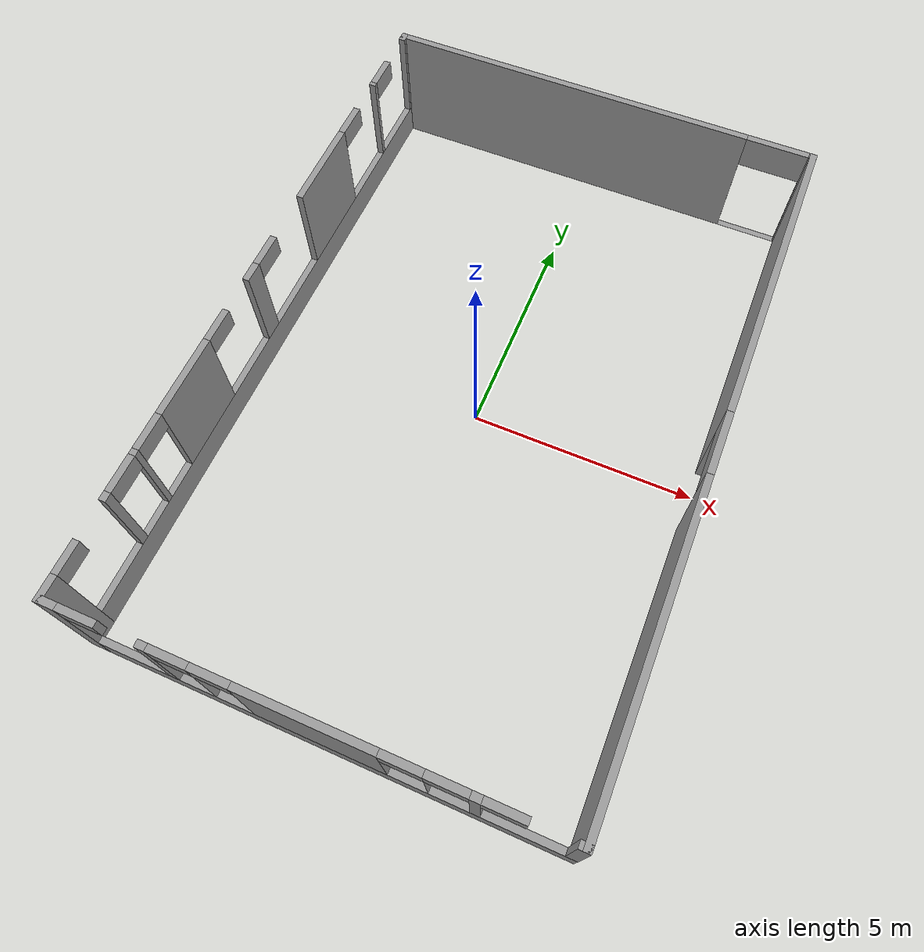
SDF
<?xml version='1.0'?>
<sdf version='1.6'>
  <model name='LabAlfa'>
    <pose frame=''>0 0 0 0 -0 0</pose>
    <link name='Wall_1'>
      <pose frame=''>0 -7.5 0 0 -0 0</pose>
      <visual name='Wall_1_Visual_0'>
        <pose frame=''>-4.8625 0 1.5 0 -0 0</pose>
        <geometry>
          <box>
            <size>0.425 0.15 3</size>
          </box>
        </geometry>
        <material>
          <script>
            <uri>file://media/materials/scripts/gazebo.material</uri>
            <name>Gazebo/Grey</name>
          </script>
          <ambient>1 1 1 1</ambient>
        </material>
      </visual>
      <collision name='Wall_1_Collision_0'>
        <geometry>
          <box>
            <size>0.425 0.15 3</size>
          </box>
        </geometry>
        <pose frame=''>-4.8625 0 1.5 0 -0 0</pose>
      </collision>
      <visual name='Wall_1_Visual_1'>
        <pose frame=''>0.2125 0 0.375 0 -0 0</pose>
        <geometry>
          <box>
            <size>9.725 0.15 0.75</size>
          </box>
        </geometry>
        <material>
          <script>
            <uri>file://media/materials/scripts/gazebo.material</uri>
            <name>Gazebo/Grey</name>
          </script>
          <ambient>1 1 1 1</ambient>
        </material>
      </visual>
      <collision name='Wall_1_Collision_1'>
        <geometry>
          <box>
            <size>9.725 0.15 0.75</size>
          </box>
        </geometry>
        <pose frame=''>0.2125 0 0.375 0 -0 0</pose>
      </collision>
      <visual name='Wall_1_Visual_2'>
        <pose frame=''>-2.95 0 1.875 0 -0 0</pose>
        <geometry>
          <box>
            <size>0.2 0.15 2.25</size>
          </box>
        </geometry>
        <material>
          <script>
            <uri>file://media/materials/scripts/gazebo.material</uri>
            <name>Gazebo/Grey</name>
          </script>
          <ambient>1 1 1 1</ambient>
        </material>
      </visual>
      <collision name='Wall_1_Collision_2'>
        <geometry>
          <box>
            <size>0.2 0.15 2.25</size>
          </box>
        </geometry>
        <pose frame=''>-2.95 0 1.875 0 -0 0</pose>
      </collision>
      <visual name='Wall_1_Visual_3'>
        <pose frame=''>-2.05 0 1.875 0 -0 0</pose>
        <geometry>
          <box>
            <size>0 0.15 2.25</size>
          </box>
        </geometry>
        <material>
          <script>
            <uri>file://media/materials/scripts/gazebo.material</uri>
            <name>Gazebo/Grey</name>
          </script>
          <ambient>1 1 1 1</ambient>
        </material>
      </visual>
      <collision name='Wall_1_Collision_3'>
        <geometry>
          <box>
            <size>0 0.15 2.25</size>
          </box>
        </geometry>
        <pose frame=''>-2.05 0 1.875 0 -0 0</pose>
      </collision>
      <visual name='Wall_1_Visual_4'>
        <pose frame=''>0.1 0 1.875 0 -0 0</pose>
        <geometry>
          <box>
            <size>2.7 0.15 2.25</size>
          </box>
        </geometry>
        <material>
          <script>
            <uri>file://media/materials/scripts/gazebo.material</uri>
            <name>Gazebo/Grey</name>
          </script>
          <ambient>1 1 1 1</ambient>
        </material>
      </visual>
      <collision name='Wall_1_Collision_4'>
        <geometry>
          <box>
            <size>2.7 0.15 2.25</size>
          </box>
        </geometry>
        <pose frame=''>0.1 0 1.875 0 -0 0</pose>
      </collision>
      <visual name='Wall_1_Visual_5'>
        <pose frame=''>2.25 0 1.875 0 -0 0</pose>
        <geometry>
          <box>
            <size>0 0.15 2.25</size>
          </box>
        </geometry>
        <material>
          <script>
            <uri>file://media/materials/scripts/gazebo.material</uri>
            <name>Gazebo/Grey</name>
          </script>
          <ambient>1 1 1 1</ambient>
        </material>
      </visual>
      <collision name='Wall_1_Collision_5'>
        <geometry>
          <box>
            <size>0 0.15 2.25</size>
          </box>
        </geometry>
        <pose frame=''>2.25 0 1.875 0 -0 0</pose>
      </collision>
      <visual name='Wall_1_Visual_6'>
        <pose frame=''>3.15 0 1.875 0 -0 0</pose>
        <geometry>
          <box>
            <size>0.2 0.15 2.25</size>
          </box>
        </geometry>
        <material>
          <script>
            <uri>file://media/materials/scripts/gazebo.material</uri>
            <name>Gazebo/Grey</name>
          </script>
          <ambient>1 1 1 1</ambient>
        </material>
      </visual>
      <collision name='Wall_1_Collision_6'>
        <geometry>
          <box>
            <size>0.2 0.15 2.25</size>
          </box>
        </geometry>
        <pose frame=''>3.15 0 1.875 0 -0 0</pose>
      </collision>
      <visual name='Wall_1_Visual_7'>
        <pose frame=''>4.95997 0 1.875 0 -0 0</pose>
        <geometry>
          <box>
            <size>0.230054 0.15 2.25</size>
          </box>
        </geometry>
        <material>
          <script>
            <uri>file://media/materials/scripts/gazebo.material</uri>
            <name>Gazebo/Grey</name>
          </script>
          <ambient>1 1 1 1</ambient>
        </material>
      </visual>
      <collision name='Wall_1_Collision_7'>
        <geometry>
          <box>
            <size>0.230054 0.15 2.25</size>
          </box>
        </geometry>
        <pose frame=''>4.95997 0 1.875 0 -0 0</pose>
      </collision>
      <visual name='Wall_1_Visual_8'>
        <pose frame=''>-4.25 0 2.75 0 -0 0</pose>
        <geometry>
          <box>
            <size>0.8 0.15 0.5</size>
          </box>
        </geometry>
        <material>
          <script>
            <uri>file://media/materials/scripts/gazebo.material</uri>
            <name>Gazebo/Grey</name>
          </script>
          <ambient>1 1 1 1</ambient>
        </material>
      </visual>
      <collision name='Wall_1_Collision_8'>
        <geometry>
          <box>
            <size>0.8 0.15 0.5</size>
          </box>
        </geometry>
        <pose frame=''>-4.25 0 2.75 0 -0 0</pose>
      </collision>
      <visual name='Wall_1_Visual_9'>
        <pose frame=''>-2.45 0 2.75 0 -0 0</pose>
        <geometry>
          <box>
            <size>0.8 0.15 0.5</size>
          </box>
        </geometry>
        <material>
          <script>
            <uri>file://media/materials/scripts/gazebo.material</uri>
            <name>Gazebo/Grey</name>
          </script>
          <ambient>1 1 1 1</ambient>
        </material>
      </visual>
      <collision name='Wall_1_Collision_9'>
        <geometry>
          <box>
            <size>0.8 0.15 0.5</size>
          </box>
        </geometry>
        <pose frame=''>-2.45 0 2.75 0 -0 0</pose>
      </collision>
      <visual name='Wall_1_Visual_10'>
        <pose frame=''>-1.65 0 2.75 0 -0 0</pose>
        <geometry>
          <box>
            <size>0.8 0.15 0.5</size>
          </box>
        </geometry>
        <material>
          <script>
            <uri>file://media/materials/scripts/gazebo.material</uri>
            <name>Gazebo/Grey</name>
          </script>
          <ambient>1 1 1 1</ambient>
        </material>
      </visual>
      <collision name='Wall_1_Collision_10'>
        <geometry>
          <box>
            <size>0.8 0.15 0.5</size>
          </box>
        </geometry>
        <pose frame=''>-1.65 0 2.75 0 -0 0</pose>
      </collision>
      <visual name='Wall_1_Visual_11'>
        <pose frame=''>1.85 0 2.75 0 -0 0</pose>
        <geometry>
          <box>
            <size>0.8 0.15 0.5</size>
          </box>
        </geometry>
        <material>
          <script>
            <uri>file://media/materials/scripts/gazebo.material</uri>
            <name>Gazebo/Grey</name>
          </script>
          <ambient>1 1 1 1</ambient>
        </material>
      </visual>
      <collision name='Wall_1_Collision_11'>
        <geometry>
          <box>
            <size>0.8 0.15 0.5</size>
          </box>
        </geometry>
        <pose frame=''>1.85 0 2.75 0 -0 0</pose>
      </collision>
      <visual name='Wall_1_Visual_12'>
        <pose frame=''>2.65 0 2.75 0 -0 0</pose>
        <geometry>
          <box>
            <size>0.8 0.15 0.5</size>
          </box>
        </geometry>
        <material>
          <script>
            <uri>file://media/materials/scripts/gazebo.material</uri>
            <name>Gazebo/Grey</name>
          </script>
          <ambient>1 1 1 1</ambient>
        </material>
      </visual>
      <collision name='Wall_1_Collision_12'>
        <geometry>
          <box>
            <size>0.8 0.15 0.5</size>
          </box>
        </geometry>
        <pose frame=''>2.65 0 2.75 0 -0 0</pose>
      </collision>
      <visual name='Wall_1_Visual_13'>
        <pose frame=''>3.64747 0 2.75 0 -0 0</pose>
        <geometry>
          <box>
            <size>0.794946 0.15 0.5</size>
          </box>
        </geometry>
        <material>
          <script>
            <uri>file://media/materials/scripts/gazebo.material</uri>
            <name>Gazebo/Grey</name>
          </script>
          <ambient>1 1 1 1</ambient>
        </material>
      </visual>
      <collision name='Wall_1_Collision_13'>
        <geometry>
          <box>
            <size>0.794946 0.15 0.5</size>
          </box>
        </geometry>
        <pose frame=''>3.64747 0 2.75 0 -0 0</pose>
      </collision>
    </link>
    <link name='Wall_13'>
      <pose frame=''>0 7.5 0 0 -0 0</pose>
      <visual name='Wall_13_Visual_0'>
        <pose frame=''>-0.7875 0 1.5 0 -0 0</pose>
        <geometry>
          <box>
            <size>8.575 0.15 3</size>
          </box>
        </geometry>
        <material>
          <script>
            <uri>file://media/materials/scripts/gazebo.material</uri>
            <name>Gazebo/Grey</name>
          </script>
          <ambient>1 1 1 1</ambient>
        </material>
      </visual>
      <collision name='Wall_13_Collision_0'>
        <geometry>
          <box>
            <size>8.575 0.15 3</size>
          </box>
        </geometry>
        <pose frame=''>-0.7875 0 1.5 0 -0 0</pose>
      </collision>
      <visual name='Wall_13_Visual_1'>
        <pose frame=''>4.9875 0 1.5 0 -0 0</pose>
        <geometry>
          <box>
            <size>0.175 0.15 3</size>
          </box>
        </geometry>
        <material>
          <script>
            <uri>file://media/materials/scripts/gazebo.material</uri>
            <name>Gazebo/Grey</name>
          </script>
          <ambient>1 1 1 1</ambient>
        </material>
      </visual>
      <collision name='Wall_13_Collision_1'>
        <geometry>
          <box>
            <size>0.175 0.15 3</size>
          </box>
        </geometry>
        <pose frame=''>4.9875 0 1.5 0 -0 0</pose>
      </collision>
      <visual name='Wall_13_Visual_2'>
        <pose frame=''>4.2 0 0 0 -0 0</pose>
        <geometry>
          <box>
            <size>1.4 0.15 0</size>
          </box>
        </geometry>
        <material>
          <script>
            <uri>file://media/materials/scripts/gazebo.material</uri>
            <name>Gazebo/Grey</name>
          </script>
          <ambient>1 1 1 1</ambient>
        </material>
      </visual>
      <collision name='Wall_13_Collision_2'>
        <geometry>
          <box>
            <size>1.4 0.15 0</size>
          </box>
        </geometry>
        <pose frame=''>4.2 0 0 0 -0 0</pose>
      </collision>
      <visual name='Wall_13_Visual_3'>
        <pose frame=''>4.2 0 2.6 0 -0 0</pose>
        <geometry>
          <box>
            <size>1.4 0.15 0.8</size>
          </box>
        </geometry>
        <material>
          <script>
            <uri>file://media/materials/scripts/gazebo.material</uri>
            <name>Gazebo/Grey</name>
          </script>
          <ambient>1 1 1 1</ambient>
        </material>
      </visual>
      <collision name='Wall_13_Collision_3'>
        <geometry>
          <box>
            <size>1.4 0.15 0.8</size>
          </box>
        </geometry>
        <pose frame=''>4.2 0 2.6 0 -0 0</pose>
      </collision>
    </link>
    <link name='Wall_4'>
      <pose frame=''>5 0 0 0 -0 1.5708</pose>
      <visual name='Wall_4_Visual_0'>
        <pose frame=''>-4.18509 0 1.5 0 -0 0</pose>
        <geometry>
          <box>
            <size>6.77981 0.15 3</size>
          </box>
        </geometry>
        <material>
          <script>
            <uri>file://media/materials/scripts/gazebo.material</uri>
            <name>Gazebo/Grey</name>
          </script>
          <ambient>1 1 1 1</ambient>
        </material>
      </visual>
      <collision name='Wall_4_Collision_0'>
        <geometry>
          <box>
            <size>6.77981 0.15 3</size>
          </box>
        </geometry>
        <pose frame=''>-4.18509 0 1.5 0 -0 0</pose>
      </collision>
      <visual name='Wall_4_Visual_1'>
        <pose frame=''>4.08991 0 1.5 0 -0 0</pose>
        <geometry>
          <box>
            <size>6.97019 0.15 3</size>
          </box>
        </geometry>
        <material>
          <script>
            <uri>file://media/materials/scripts/gazebo.material</uri>
            <name>Gazebo/Grey</name>
          </script>
          <ambient>1 1 1 1</ambient>
        </material>
      </visual>
      <collision name='Wall_4_Collision_1'>
        <geometry>
          <box>
            <size>6.97019 0.15 3</size>
          </box>
        </geometry>
        <pose frame=''>4.08991 0 1.5 0 -0 0</pose>
      </collision>
      <visual name='Wall_4_Visual_2'>
        <pose frame=''>-0.095189 0 2.5 0 -0 0</pose>
        <geometry>
          <box>
            <size>1.4 0.15 1</size>
          </box>
        </geometry>
        <material>
          <script>
            <uri>file://media/materials/scripts/gazebo.material</uri>
            <name>Gazebo/Grey</name>
          </script>
          <ambient>1 1 1 1</ambient>
        </material>
      </visual>
      <collision name='Wall_4_Collision_2'>
        <geometry>
          <box>
            <size>1.4 0.15 1</size>
          </box>
        </geometry>
        <pose frame=''>-0.095189 0 2.5 0 -0 0</pose>
      </collision>
    </link>
    <link name='Wall_7'>
      <pose frame=''>-5 0 0 0 -0 1.5708</pose>
      <visual name='Wall_7_Visual_0'>
        <pose frame=''>-7.30434 0 1.5 0 -0 0</pose>
        <geometry>
          <box>
            <size>0.541312 0.15 3</size>
          </box>
        </geometry>
        <material>
          <script>
            <uri>file://media/materials/scripts/gazebo.material</uri>
            <name>Gazebo/Grey</name>
          </script>
          <ambient>1 1 1 1</ambient>
        </material>
      </visual>
      <collision name='Wall_7_Collision_0'>
        <geometry>
          <box>
            <size>0.541312 0.15 3</size>
          </box>
        </geometry>
        <pose frame=''>-7.30434 0 1.5 0 -0 0</pose>
      </collision>
      <visual name='Wall_7_Visual_1'>
        <pose frame=''>0.270656 0 0.375 0 -0 0</pose>
        <geometry>
          <box>
            <size>14.6087 0.15 0.75</size>
          </box>
        </geometry>
        <material>
          <script>
            <uri>file://media/materials/scripts/gazebo.material</uri>
            <name>Gazebo/Grey</name>
          </script>
          <ambient>1 1 1 1</ambient>
        </material>
      </visual>
      <collision name='Wall_7_Collision_1'>
        <geometry>
          <box>
            <size>14.6087 0.15 0.75</size>
          </box>
        </geometry>
        <pose frame=''>0.270656 0 0.375 0 -0 0</pose>
      </collision>
      <visual name='Wall_7_Visual_2'>
        <pose frame=''>-5.45869 0 1.875 0 -0 0</pose>
        <geometry>
          <box>
            <size>0.19 0.15 2.25</size>
          </box>
        </geometry>
        <material>
          <script>
            <uri>file://media/materials/scripts/gazebo.material</uri>
            <name>Gazebo/Grey</name>
          </script>
          <ambient>1 1 1 1</ambient>
        </material>
      </visual>
      <collision name='Wall_7_Collision_2'>
        <geometry>
          <box>
            <size>0.19 0.15 2.25</size>
          </box>
        </geometry>
        <pose frame=''>-5.45869 0 1.875 0 -0 0</pose>
      </collision>
      <visual name='Wall_7_Visual_3'>
        <pose frame=''>-4.49944 0 1.875 0 -0 0</pose>
        <geometry>
          <box>
            <size>0.1285 0.15 2.25</size>
          </box>
        </geometry>
        <material>
          <script>
            <uri>file://media/materials/scripts/gazebo.material</uri>
            <name>Gazebo/Grey</name>
          </script>
          <ambient>1 1 1 1</ambient>
        </material>
      </visual>
      <collision name='Wall_7_Collision_3'>
        <geometry>
          <box>
            <size>0.1285 0.15 2.25</size>
          </box>
        </geometry>
        <pose frame=''>-4.49944 0 1.875 0 -0 0</pose>
      </collision>
      <visual name='Wall_7_Visual_4'>
        <pose frame=''>-2.74019 0 1.875 0 -0 0</pose>
        <geometry>
          <box>
            <size>1.79 0.15 2.25</size>
          </box>
        </geometry>
        <material>
          <script>
            <uri>file://media/materials/scripts/gazebo.material</uri>
            <name>Gazebo/Grey</name>
          </script>
          <ambient>1 1 1 1</ambient>
        </material>
      </visual>
      <collision name='Wall_7_Collision_4'>
        <geometry>
          <box>
            <size>1.79 0.15 2.25</size>
          </box>
        </geometry>
        <pose frame=''>-2.74019 0 1.875 0 -0 0</pose>
      </collision>
      <visual name='Wall_7_Visual_5'>
        <pose frame=''>-0.060189 0 1.875 0 -0 0</pose>
        <geometry>
          <box>
            <size>0.45 0.15 2.25</size>
          </box>
        </geometry>
        <material>
          <script>
            <uri>file://media/materials/scripts/gazebo.material</uri>
            <name>Gazebo/Grey</name>
          </script>
          <ambient>1 1 1 1</ambient>
        </material>
      </visual>
      <collision name='Wall_7_Collision_5'>
        <geometry>
          <box>
            <size>0.45 0.15 2.25</size>
          </box>
        </geometry>
        <pose frame=''>-0.060189 0 1.875 0 -0 0</pose>
      </collision>
      <visual name='Wall_7_Visual_6'>
        <pose frame=''>3.09904 0 1.875 0 -0 0</pose>
        <geometry>
          <box>
            <size>2.04846 0.15 2.25</size>
          </box>
        </geometry>
        <material>
          <script>
            <uri>file://media/materials/scripts/gazebo.material</uri>
            <name>Gazebo/Grey</name>
          </script>
          <ambient>1 1 1 1</ambient>
        </material>
      </visual>
      <collision name='Wall_7_Collision_6'>
        <geometry>
          <box>
            <size>2.04846 0.15 2.25</size>
          </box>
        </geometry>
        <pose frame=''>3.09904 0 1.875 0 -0 0</pose>
      </collision>
      <visual name='Wall_7_Visual_7'>
        <pose frame=''>5.75327 0 1.875 0 -0 0</pose>
        <geometry>
          <box>
            <size>0.1 0.15 2.25</size>
          </box>
        </geometry>
        <material>
          <script>
            <uri>file://media/materials/scripts/gazebo.material</uri>
            <name>Gazebo/Grey</name>
          </script>
          <ambient>1 1 1 1</ambient>
        </material>
      </visual>
      <collision name='Wall_7_Collision_7'>
        <geometry>
          <box>
            <size>0.1 0.15 2.25</size>
          </box>
        </geometry>
        <pose frame=''>5.75327 0 1.875 0 -0 0</pose>
      </collision>
      <visual name='Wall_7_Visual_8'>
        <pose frame=''>7.45913 0 1.875 0 -0 0</pose>
        <geometry>
          <box>
            <size>0.231732 0.15 2.25</size>
          </box>
        </geometry>
        <material>
          <script>
            <uri>file://media/materials/scripts/gazebo.material</uri>
            <name>Gazebo/Grey</name>
          </script>
          <ambient>1 1 1 1</ambient>
        </material>
      </visual>
      <collision name='Wall_7_Collision_8'>
        <geometry>
          <box>
            <size>0.231732 0.15 2.25</size>
          </box>
        </geometry>
        <pose frame=''>7.45913 0 1.875 0 -0 0</pose>
      </collision>
      <visual name='Wall_7_Visual_9'>
        <pose frame=''>-6.69369 0 2.75 0 -0 0</pose>
        <geometry>
          <box>
            <size>0.68 0.15 0.5</size>
          </box>
        </geometry>
        <material>
          <script>
            <uri>file://media/materials/scripts/gazebo.material</uri>
            <name>Gazebo/Grey</name>
          </script>
          <ambient>1 1 1 1</ambient>
        </material>
      </visual>
      <collision name='Wall_7_Collision_9'>
        <geometry>
          <box>
            <size>0.68 0.15 0.5</size>
          </box>
        </geometry>
        <pose frame=''>-6.69369 0 2.75 0 -0 0</pose>
      </collision>
      <visual name='Wall_7_Visual_10'>
        <pose frame=''>-4.96369 0 2.75 0 -0 0</pose>
        <geometry>
          <box>
            <size>0.8 0.15 0.5</size>
          </box>
        </geometry>
        <material>
          <script>
            <uri>file://media/materials/scripts/gazebo.material</uri>
            <name>Gazebo/Grey</name>
          </script>
          <ambient>1 1 1 1</ambient>
        </material>
      </visual>
      <collision name='Wall_7_Collision_10'>
        <geometry>
          <box>
            <size>0.8 0.15 0.5</size>
          </box>
        </geometry>
        <pose frame=''>-4.96369 0 2.75 0 -0 0</pose>
      </collision>
      <visual name='Wall_7_Visual_11'>
        <pose frame=''>-4.03519 0 2.75 0 -0 0</pose>
        <geometry>
          <box>
            <size>0.8 0.15 0.5</size>
          </box>
        </geometry>
        <material>
          <script>
            <uri>file://media/materials/scripts/gazebo.material</uri>
            <name>Gazebo/Grey</name>
          </script>
          <ambient>1 1 1 1</ambient>
        </material>
      </visual>
      <collision name='Wall_7_Collision_11'>
        <geometry>
          <box>
            <size>0.8 0.15 0.5</size>
          </box>
        </geometry>
        <pose frame=''>-4.03519 0 2.75 0 -0 0</pose>
      </collision>
      <visual name='Wall_7_Visual_12'>
        <pose frame=''>-1.46519 0 2.75 0 -0 0</pose>
        <geometry>
          <box>
            <size>0.76 0.15 0.5</size>
          </box>
        </geometry>
        <material>
          <script>
            <uri>file://media/materials/scripts/gazebo.material</uri>
            <name>Gazebo/Grey</name>
          </script>
          <ambient>1 1 1 1</ambient>
        </material>
      </visual>
      <collision name='Wall_7_Collision_12'>
        <geometry>
          <box>
            <size>0.76 0.15 0.5</size>
          </box>
        </geometry>
        <pose frame=''>-1.46519 0 2.75 0 -0 0</pose>
      </collision>
      <visual name='Wall_7_Visual_13'>
        <pose frame=''>0.539811 0 2.75 0 -0 0</pose>
        <geometry>
          <box>
            <size>0.75 0.15 0.5</size>
          </box>
        </geometry>
        <material>
          <script>
            <uri>file://media/materials/scripts/gazebo.material</uri>
            <name>Gazebo/Grey</name>
          </script>
          <ambient>1 1 1 1</ambient>
        </material>
      </visual>
      <collision name='Wall_7_Collision_13'>
        <geometry>
          <box>
            <size>0.75 0.15 0.5</size>
          </box>
        </geometry>
        <pose frame=''>0.539811 0 2.75 0 -0 0</pose>
      </collision>
      <visual name='Wall_7_Visual_14'>
        <pose frame=''>4.51327 0 2.75 0 -0 0</pose>
        <geometry>
          <box>
            <size>0.78 0.15 0.5</size>
          </box>
        </geometry>
        <material>
          <script>
            <uri>file://media/materials/scripts/gazebo.material</uri>
            <name>Gazebo/Grey</name>
          </script>
          <ambient>1 1 1 1</ambient>
        </material>
      </visual>
      <collision name='Wall_7_Collision_14'>
        <geometry>
          <box>
            <size>0.78 0.15 0.5</size>
          </box>
        </geometry>
        <pose frame=''>4.51327 0 2.75 0 -0 0</pose>
      </collision>
      <visual name='Wall_7_Visual_15'>
        <pose frame=''>6.17327 0 2.75 0 -0 0</pose>
        <geometry>
          <box>
            <size>0.74 0.15 0.5</size>
          </box>
        </geometry>
        <material>
          <script>
            <uri>file://media/materials/scripts/gazebo.material</uri>
            <name>Gazebo/Grey</name>
          </script>
          <ambient>1 1 1 1</ambient>
        </material>
      </visual>
      <collision name='Wall_7_Collision_15'>
        <geometry>
          <box>
            <size>0.74 0.15 0.5</size>
          </box>
        </geometry>
        <pose frame=''>6.17327 0 2.75 0 -0 0</pose>
      </collision>
    </link>
    <static>1</static>
  </model>
</sdf>
